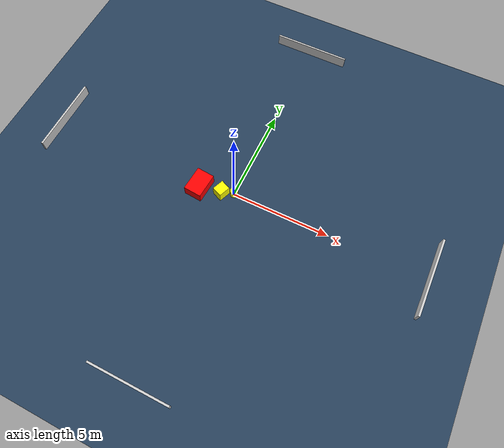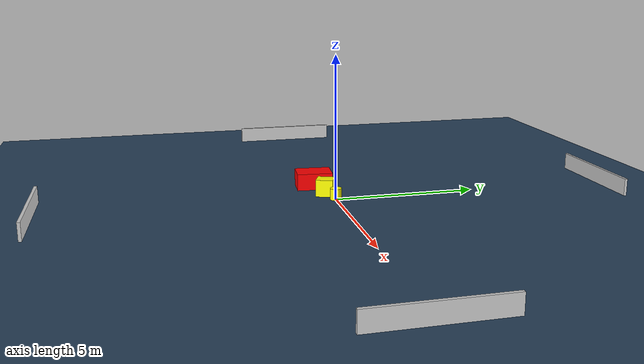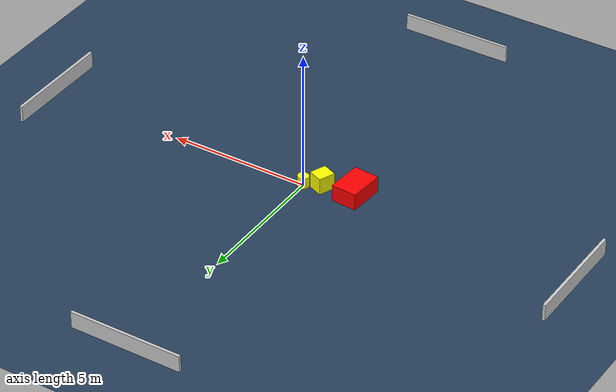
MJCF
<?xml version="1.0" ?>
<mujoco model="generated_environment">
  <option timestep="0.01" integrator="RK4" cone="elliptic"/>
  <default>
    <geom density="1"/>
  </default>
  <asset>
    <texture builtin="gradient" height="3072" name="skybox" rgb1="0.3 0.5 0.7" rgb2="0 0 0" type="skybox" width="512"/>
    <texture builtin="checker" height="300" name="groundplane" rgb1="0.2 0.3 0.4" rgb2="0.1 0.2 0.3" type="2d" width="300"/>
    <material name="groundplane" reflectance="0.2" texrepeat="5 5" texture="groundplane"/>
  </asset>
  <worldbody>
    <light dir="0 0 -1" directional="true" pos="0 0 1.5"/>
    <geom condim="3" friction="0.5 0.005 0.001" material="groundplane" name="floor" pos="0 0 0" size="0 0 0.05" type="plane"/>
    <body name="walls">
      <geom name="wall_1" condim="4" pos="-10.0 0.0 0.3" rgba="0.800000011920929 0.800000011920929 0.800000011920929 1.0" size="0.05 2.0 0.3" type="box"/>
      <geom name="wall_2" condim="4" pos="10.0 0.0 0.3" rgba="0.800000011920929 0.800000011920929 0.800000011920929 1.0" size="0.05 2.0 0.3" type="box"/>
      <geom name="wall_3" condim="4" pos="0.0 -10.0 0.3" rgba="0.800000011920929 0.800000011920929 0.800000011920929 1.0" size="2.0 0.05 0.3" type="box"/>
      <geom name="wall_4" condim="4" pos="0.0 10.0 0.3" rgba="0.800000011920929 0.800000011920929 0.800000011920929 1.0" size="2.0 0.05 0.3" type="box"/>
    </body>
    <body name="robot">
      <joint name="joint_x" type="slide" pos="0 0 0" axis="1 0 0"/>
      <joint name="joint_y" type="slide" pos="0 0 0" axis="0 1 0"/>
      <geom name="robot" type="cylinder" pos="0.0 0.0 0.2" size="0.2 0.2 0.0" mass="5.0" friction="1.0 0.005 0.0001" condim="4" rgba="1.0 1.0 0.0 1.0"/>
    </body>
    <body name="obstacle_1_movable">
      <geom name="obstacle_1_movable" condim="4" pos="-0.5862157268074888 -0.23137176789074732 0.3" euler="0 0 337.62330787450315" friction="0.0 0.005 0.001" rgba="1.0 1.0 0.0 1.0" size="0.26491309993025597 0.3012254837698545 0.3" type="box" mass="0.1"/>
      <joint type="free"/>
    </body>
    <body name="obstacle_2_static">
      <geom name="obstacle_2_static" condim="4" pos="-1.7273751408392253 -0.41048336456591394 0.3" euler="0 0 85.35997425452575" friction="0.0 0.005 0.001" rgba="1.0 0.0 0.0 1.0" size="0.6369148321063696 0.4569101264697337 0.3" type="box"/>
    </body>
  </worldbody>
  <actuator>
    <motor name="actuator_x" joint="joint_x" gear="1" ctrlrange="-1 1"/>
    <motor name="actuator_y" joint="joint_y" gear="1" ctrlrange="-1 1"/>
  </actuator>
</mujoco>
